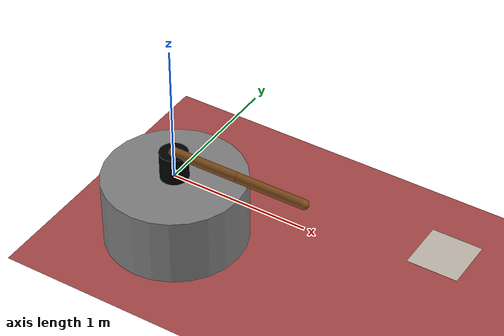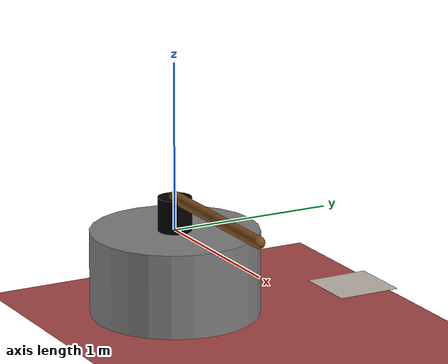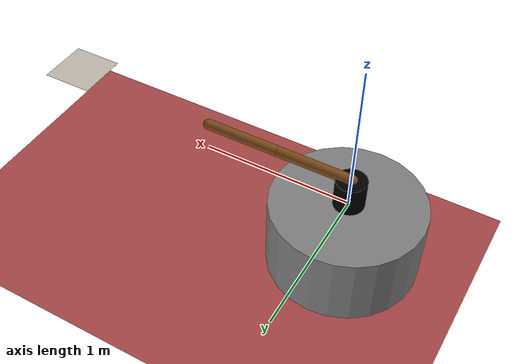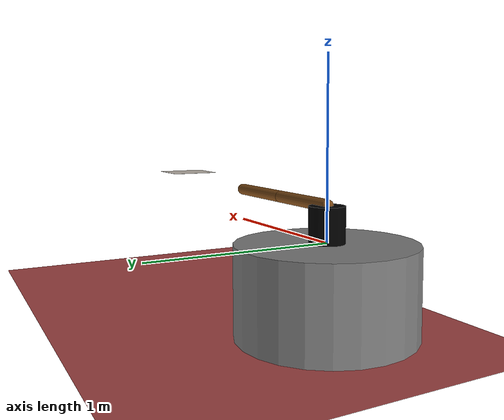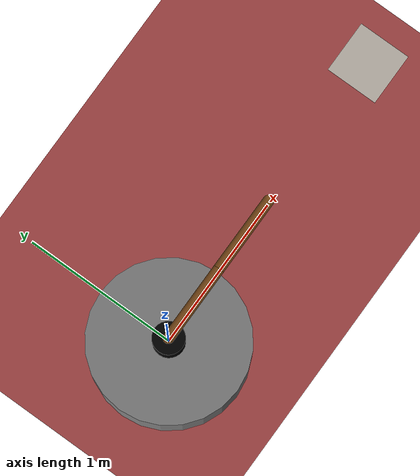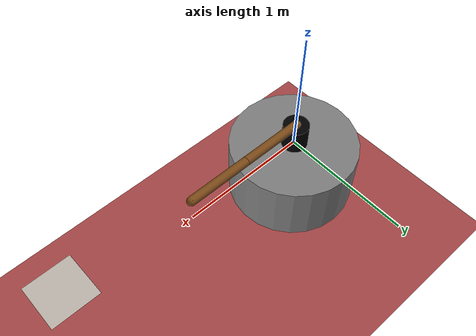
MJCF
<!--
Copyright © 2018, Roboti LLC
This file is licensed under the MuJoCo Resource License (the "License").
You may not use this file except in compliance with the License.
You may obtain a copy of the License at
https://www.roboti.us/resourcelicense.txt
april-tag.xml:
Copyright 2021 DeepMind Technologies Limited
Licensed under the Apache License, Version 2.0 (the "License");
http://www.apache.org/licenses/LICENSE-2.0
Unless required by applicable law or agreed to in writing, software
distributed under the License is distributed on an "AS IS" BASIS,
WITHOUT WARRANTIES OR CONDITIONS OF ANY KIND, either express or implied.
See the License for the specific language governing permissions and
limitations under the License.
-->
<mujoco model="2-link 6-muscle arm">

    <option timestep="0.005" iterations="50" solver="Newton" tolerance="1e-10"/>

    <size njmax="50" nconmax="10" nstack="200"/>

    <visual>
        <rgba haze=".3 .3 .3 1"/>
        <map znear="0.01" zfar="10"/>
    </visual>

    <default>
        <joint type="hinge" pos="0 0 0" axis="0 0 1" limited="true" range="0 120" damping="0.1"/>
        <muscle ctrllimited="true" ctrlrange="0 1"/>
    </default>

    <asset>
        <texture type="skybox" builtin="gradient" rgb1="0.6 0.6 0.6" rgb2="0 0 0" width="512" height="512"/>

        <texture name="texplane" type="2d" builtin="checker" rgb1="1 .25 .25" rgb2=".3 .3 .3" width="512" height="512" mark="cross" markrgb=".8 .8 .8"/>
        <material name="matplane" reflectance="0.3" texture="texplane" texrepeat="1 1" texuniform="true"/>
    </asset>

    <worldbody>
        <geom name="floor" pos="0 0 -0.5" size="0 0 1" type="plane" material="matplane"/>
        <geom fromto="0 0 0 0 0 -0.5" size=".5" type="cylinder"/>
        <light directional="true" diffuse=".8 .8 .8" specular=".2 .2 .2" pos="0 0 5" dir="0 0 -1"/>

        <body pos="0 0 0">
            <geom type="cylinder" size="0.1" fromto="0 0 0 0 0 0.2" rgba="0 0 0 1"/>
            <joint name="q1" type="hinge" axis="0 0 1" limited="true" range="-120 120"/>

            <camera name="camera-base" euler="90 -90 0" pos=".1 0 .08" fovy="90"/>

            <body pos="0 0 .2">
                <geom type="capsule" size="0.035" fromto="0 0 0  0.5 0 0" rgba=".5 .3 .1 1"/>
                <joint name="q2" type="hinge" axis="0 1 0" limited="true" range="-120 0"/>
                <body pos="0.5 0 0">
                    <geom type="capsule" size="0.035" fromto="0 0 0  0.5 0 0" rgba=".5 .3 .1 1"/>
                    <joint name="q3" type="hinge" axis="0 1 0" limited="true" range="0 120"/>

                    <camera name="camera-ee" euler="90 -90 0" pos=".5 0 0" fovy="90"/>
                </body>
            </body>
        </body>
    </worldbody>

    <actuator>
        <motor joint="q1" gear="1" ctrlrange="-20 20"/>
        <motor joint="q2" gear="1" ctrlrange="-20 20"/>
        <motor joint="q3" gear="1" ctrlrange="-20 20"/>
    </actuator>

    <include file="april-tag.xml"/>
</mujoco>

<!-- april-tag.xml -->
<mujoco>
    <option timestep="0.005" solver="Newton" iterations="30" tolerance="1e-10"/>

    <asset>
        <texture name="apriltag_texture" type="2d" file="tag_36h11_0.png"/>
        <material name="apriltag_material" texture="apriltag_texture"/>
    </asset>

    <worldbody>
        <body mocap="true" pos="2 0 0.25" quat="0.707 0 0 0.707" zaxis="-1 0 0">
            <geom type="box" size=".17 .17 0.0005" material="apriltag_material"/>
        </body>
    </worldbody>
</mujoco>
